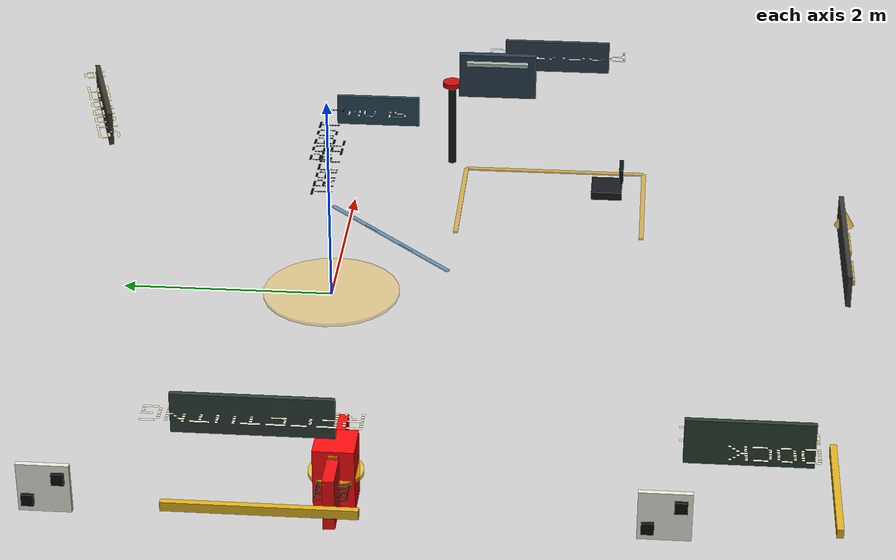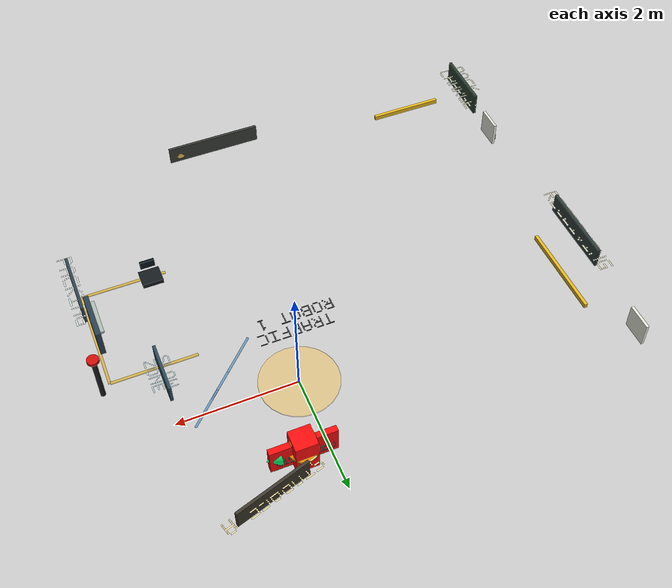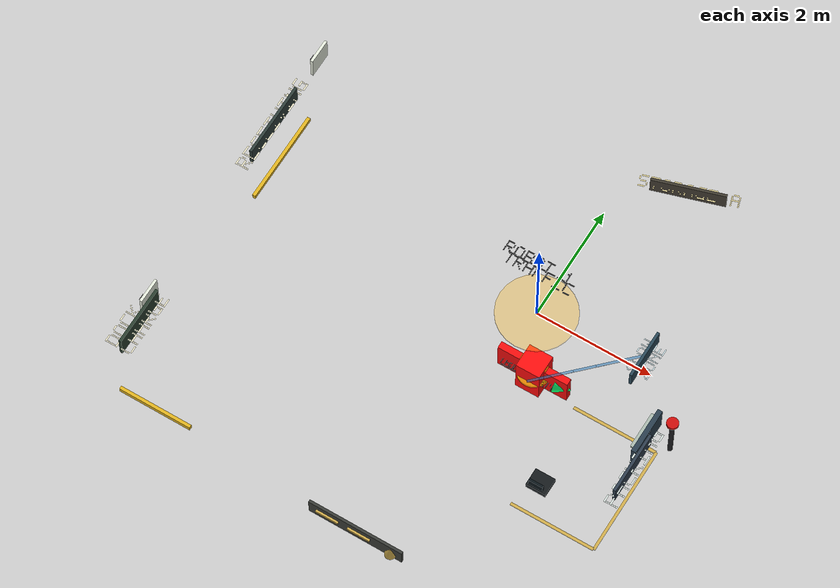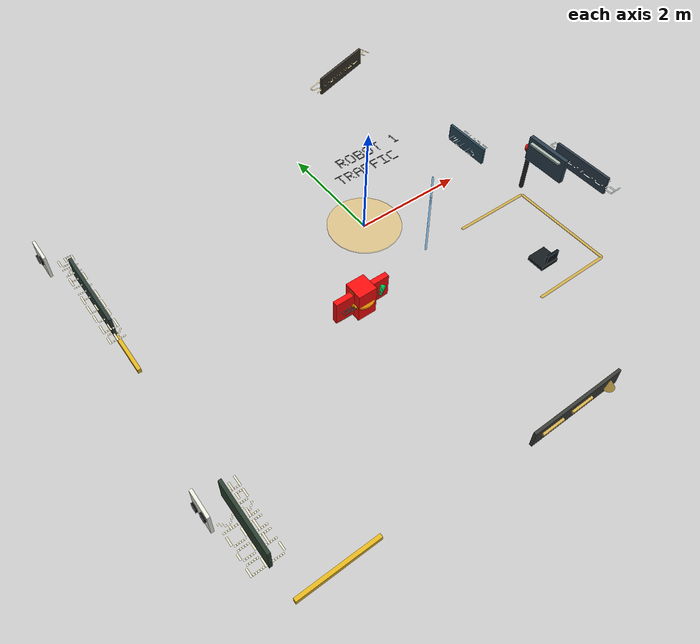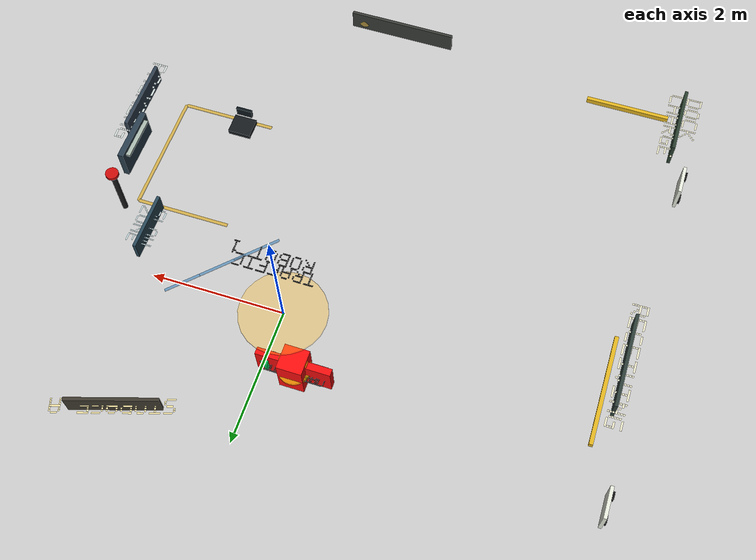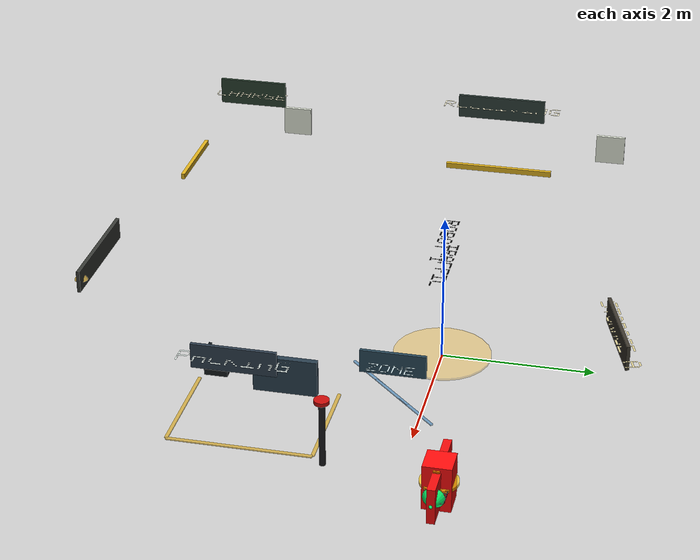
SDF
<sdf version="1.9">
 <world name="factory_patrol">
  <model name="showcase_packing_workcell_detail">
   <static>true</static>
   <link name="link">
    <visual name="packing_tool_board">
     <pose>2.68 -1.40 1.13 0 0 0</pose>
     <geometry><box><size>0.08 0.78 0.46</size></box></geometry>
     <material><diffuse>0.16 0.24 0.30 1</diffuse></material>
    </visual>
    <visual name="packing_tool_shadow_rail">
     <pose>2.63 -1.40 1.28 0 0 0</pose>
     <geometry><box><size>0.10 0.62 0.035</size></box></geometry>
     <material><diffuse>0.66 0.72 0.68 1</diffuse></material>
    </visual>
    <visual name="packing_scale_base">
     <pose>1.58 -2.56 0.44 0 0 0</pose>
     <geometry><box><size>0.34 0.30 0.08</size></box></geometry>
     <material><diffuse>0.08 0.10 0.11 1</diffuse></material>
    </visual>
    <visual name="packing_scale_display">
     <pose>1.58 -2.70 0.63 0 0 0</pose>
     <geometry><box><size>0.24 0.04 0.14</size></box></geometry>
     <material><diffuse>0.04 0.08 0.10 1</diffuse><emissive>0.00 0.14 0.18 1</emissive></material>
    </visual>
    <visual name="packing_safety_boundary_north">
     <pose>2.00 -1.08 0.044 0 0 0</pose>
     <geometry><box><size>1.42 0.045 0.018</size></box></geometry>
     <material><diffuse>0.86 0.68 0.18 0.76</diffuse><emissive>0.10 0.06 0.00 1</emissive></material>
    </visual>
    <visual name="packing_safety_boundary_south">
     <pose>2.00 -2.92 0.044 0 0 0</pose>
     <geometry><box><size>1.42 0.045 0.018</size></box></geometry>
     <material><diffuse>0.86 0.68 0.18 0.76</diffuse><emissive>0.10 0.06 0.00 1</emissive></material>
    </visual>
    <visual name="packing_safety_boundary_east">
     <pose>2.72 -2.00 0.044 0 0 1.5708</pose>
     <geometry><box><size>1.84 0.045 0.018</size></box></geometry>
     <material><diffuse>0.86 0.68 0.18 0.76</diffuse><emissive>0.10 0.06 0.00 1</emissive></material>
    </visual>
   </link>
  </model>
  <model name="showcase_safety_and_landmarks">
   <static>true</static>
   <link name="link">
    <visual name="guardrail_dock_rail">
     <pose>-3.90 -4.55 0.58 0 0 0</pose>
     <geometry><box><size>1.24 0.055 0.08</size></box></geometry>
     <material><diffuse>0.88 0.70 0.12 1</diffuse><emissive>0.14 0.08 0.00 1</emissive></material>
    </visual>
    <visual name="guardrail_receiving_rail">
     <pose>-4.55 0.00 0.58 0 0 1.5708</pose>
     <geometry><box><size>1.58 0.055 0.08</size></box></geometry>
     <material><diffuse>0.88 0.70 0.12 1</diffuse><emissive>0.14 0.08 0.00 1</emissive></material>
    </visual>
    <visual name="estop_post">
     <pose>2.86 -0.92 0.48 0 0 0</pose>
     <geometry><cylinder><radius>0.04</radius><length>0.86</length></cylinder></geometry>
     <material><diffuse>0.10 0.10 0.11 1</diffuse></material>
    </visual>
    <visual name="estop_button">
     <pose>2.86 -0.92 0.94 0 0 0</pose>
     <geometry><cylinder><radius>0.095</radius><length>0.05</length></cylinder></geometry>
     <material><diffuse>0.80 0.05 0.04 1</diffuse><emissive>0.18 0.00 0.00 1</emissive></material>
    </visual>
    <visual name="slow_zone_hash_1">
     <pose>0.72 -0.82 0.050 0 0 0.7854</pose>
     <geometry><box><size>0.72 0.035 0.018</size></box></geometry>
     <material><diffuse>0.18 0.48 0.72 0.58</diffuse></material>
    </visual>
    <visual name="slow_zone_hash_2">
     <pose>1.10 -0.44 0.050 0 0 0.7854</pose>
     <geometry><box><size>0.72 0.035 0.018</size></box></geometry>
     <material><diffuse>0.18 0.48 0.72 0.58</diffuse></material>
    </visual>
    <visual name="slow_zone_hash_3">
     <pose>1.48 -0.06 0.050 0 0 0.7854</pose>
     <geometry><box><size>0.72 0.035 0.018</size></box></geometry>
     <material><diffuse>0.18 0.48 0.72 0.58</diffuse></material>
    </visual>
    <visual name="landmark_receiving_plate">
     <pose>-4.88 1.62 0.92 0 0 0</pose>
     <geometry><box><size>0.045 0.42 0.42</size></box></geometry>
     <material><diffuse>0.90 0.92 0.86 1</diffuse></material>
    </visual>
    <visual name="landmark_receiving_black_1">
     <pose>-4.91 1.50 1.02 0 0 0</pose>
     <geometry><box><size>0.050 0.10 0.10</size></box></geometry>
     <material><diffuse>0.04 0.04 0.04 1</diffuse></material>
    </visual>
    <visual name="landmark_receiving_black_2">
     <pose>-4.91 1.75 0.82 0 0 0</pose>
     <geometry><box><size>0.050 0.10 0.10</size></box></geometry>
     <material><diffuse>0.04 0.04 0.04 1</diffuse></material>
    </visual>
    <visual name="landmark_dock_plate">
     <pose>-4.88 -3.18 0.92 0 0 0</pose>
     <geometry><box><size>0.045 0.42 0.42</size></box></geometry>
     <material><diffuse>0.90 0.92 0.86 1</diffuse></material>
    </visual>
    <visual name="landmark_dock_black_1">
     <pose>-4.91 -3.30 1.02 0 0 0</pose>
     <geometry><box><size>0.050 0.10 0.10</size></box></geometry>
     <material><diffuse>0.04 0.04 0.04 1</diffuse></material>
    </visual>
    <visual name="landmark_dock_black_2">
     <pose>-4.91 -3.05 0.82 0 0 0</pose>
     <geometry><box><size>0.050 0.10 0.10</size></box></geometry>
     <material><diffuse>0.04 0.04 0.04 1</diffuse></material>
    </visual>
   </link>
  </model>
  <model name="showcase_static_station_signs">
   <static>true</static>
   <link name="link">
    <visual name="sign_receiving_board">
     <pose>-4.66 0.00 1.52 0 0 0</pose>
     <geometry><box><size>0.045 1.28 0.34</size></box></geometry>
     <material><diffuse>0.18 0.24 0.22 0.96</diffuse><ambient>0.18 0.24 0.22 0.96</ambient></material>
    </visual>
    <visual name="sign_receiving_text">
     <pose>-4.69 0.00 1.52 0 0 1.5708</pose>
     <geometry>
      <mesh><uri>../media/text_meshes/label_receiving.obj</uri><scale>1.28 1.28 1</scale></mesh>
     </geometry>
     <material>
      <ambient>0.92 0.90 0.78 1</ambient>
      <diffuse>0.92 0.90 0.78 1</diffuse>
      <double_sided>true</double_sided>
     </material>
    </visual>
    <visual name="sign_dock_board">
     <pose>-4.62 -3.80 1.44 0 0 0</pose>
     <geometry><box><size>0.045 1.00 0.38</size></box></geometry>
     <material><diffuse>0.16 0.24 0.18 0.96</diffuse><ambient>0.16 0.24 0.18 0.96</ambient></material>
    </visual>
    <visual name="sign_dock_text">
     <pose>-4.65 -3.80 1.44 0 0 1.5708</pose>
     <geometry><mesh><uri>../media/text_meshes/label_dock.obj</uri><scale>1.35 1.35 1</scale></mesh></geometry>
     <material>
      <ambient>0.92 0.90 0.78 1</ambient>
      <diffuse>0.92 0.90 0.78 1</diffuse>
      <double_sided>true</double_sided>
     </material>
    </visual>
    <visual name="sign_storage_a_board">
     <pose>1.22 2.35 1.34 0 0 0.30</pose>
     <geometry><box><size>1.18 0.045 0.32</size></box></geometry>
     <material><diffuse>0.24 0.22 0.18 0.96</diffuse><ambient>0.24 0.22 0.18 0.96</ambient></material>
    </visual>
    <visual name="sign_storage_a_text">
     <pose>1.22 2.38 1.34 0 0 0.30</pose>
     <geometry>
      <mesh><uri>../media/text_meshes/label_storage_a.obj</uri><scale>1.12 1.12 1</scale></mesh>
     </geometry>
     <material>
      <ambient>0.92 0.86 0.62 1</ambient>
      <diffuse>0.92 0.86 0.62 1</diffuse>
      <double_sided>true</double_sided>
     </material>
    </visual>
    <visual name="sign_packing_board">
     <pose>2.78 -2.00 1.32 0 0 0</pose>
     <geometry><box><size>0.045 1.05 0.32</size></box></geometry>
     <material><diffuse>0.18 0.24 0.30 0.96</diffuse><ambient>0.18 0.24 0.30 0.96</ambient></material>
    </visual>
    <visual name="sign_packing_text">
     <pose>2.81 -2.00 1.32 0 0 1.5708</pose>
     <geometry><mesh><uri>../media/text_meshes/label_packing.obj</uri><scale>1.20 1.20 1</scale></mesh></geometry>
     <material>
      <ambient>0.84 0.88 0.86 1</ambient>
      <diffuse>0.84 0.88 0.86 1</diffuse>
      <double_sided>true</double_sided>
     </material>
    </visual>
    <visual name="sign_slow_zone_board">
     <pose>1.98 -0.25 1.02 0 0 0</pose>
     <geometry><box><size>0.045 0.82 0.30</size></box></geometry>
     <material><diffuse>0.16 0.28 0.34 0.94</diffuse><ambient>0.16 0.28 0.34 0.94</ambient></material>
    </visual>
    <visual name="sign_slow_zone_text">
     <pose>2.01 -0.25 1.02 0 0 1.5708</pose>
     <geometry>
      <mesh><uri>../media/text_meshes/label_slow_zone.obj</uri><scale>1.12 1.12 1</scale></mesh>
     </geometry>
     <material>
      <ambient>0.78 0.86 0.88 1</ambient>
      <diffuse>0.78 0.86 0.88 1</diffuse>
      <double_sided>true</double_sided>
     </material>
    </visual>
    <visual name="sign_route_board">
     <pose>-0.25 -4.78 0.82 0 0 0</pose>
     <geometry><box><size>1.60 0.045 0.30</size></box></geometry>
     <material><diffuse>0.22 0.23 0.21 0.96</diffuse><ambient>0.22 0.23 0.21 0.96</ambient></material>
    </visual>
    <visual name="sign_route_mark_1">
     <pose>-0.72 -4.81 0.84 0 0 0</pose>
     <geometry><box><size>0.38 0.052 0.045</size></box></geometry>
     <material><diffuse>0.82 0.68 0.30 1</diffuse></material>
    </visual>
    <visual name="sign_route_mark_2">
     <pose>-0.18 -4.81 0.84 0 0 0</pose>
     <geometry><box><size>0.38 0.052 0.045</size></box></geometry>
     <material><diffuse>0.82 0.68 0.30 1</diffuse></material>
    </visual>
    <visual name="sign_route_arrow">
     <pose>0.36 -4.81 0.84 0 0 1.5708</pose>
     <geometry><cone><radius>0.09</radius><length>0.16</length></cone></geometry>
     <material><diffuse>0.82 0.68 0.30 1</diffuse></material>
    </visual>
   </link>
  </model>
  <model name="traffic_intersection_zone">
   <static>true</static>
   <pose>0 0 0.03 0 0 0</pose>
   <link name="link">
    <visual name="visual">
     <geometry><cylinder><radius>0.65</radius><length>0.03</length></cylinder></geometry>
     <material><diffuse>1.0 0.72 0.1 0.35</diffuse></material>
    </visual>
   </link>
  </model>
  <model name="traffic_route_block_barrier">
   <static>false</static>
   <pose>0 0 -2 0 0 0</pose>
   <link name="link">
    <gravity>false</gravity>
    <visual name="barrier_visual">
     <geometry><box><size>1.25 0.12 0.55</size></box></geometry>
     <material><diffuse>0.95 0.05 0.05 0.9</diffuse><emissive>0.35 0.0 0.0 1</emissive></material>
    </visual>
   </link>
  </model>
  <model name="traffic_deadlock_warning_beacon">
   <static>false</static>
   <pose>0 0 -2 0 0 0</pose>
   <link name="link">
    <gravity>false</gravity>
    <visual name="warning_visual">
     <geometry><sphere><radius>0.14</radius></sphere></geometry>
     <material><diffuse>1.0 0.18 0.05 0.95</diffuse><emissive>0.75 0.04 0.0 1</emissive></material>
    </visual>
   </link>
  </model>
  <model name="traffic_route_reopen_beacon">
   <static>false</static>
   <pose>0 0 -2 0 0 0</pose>
   <link name="link">
    <gravity>false</gravity>
    <visual name="open_visual">
     <geometry><sphere><radius>0.13</radius></sphere></geometry>
     <material><diffuse>0.04 0.95 0.62 0.95</diffuse><emissive>0.01 0.55 0.28 1</emissive></material>
    </visual>
    <visual name="lane_visual">
     <pose>0 0 -0.28 0 0 0</pose>
     <geometry><box><size>1.10 0.08 0.08</size></box></geometry>
     <material><diffuse>0.04 0.70 0.38 0.85</diffuse><emissive>0.01 0.22 0.10 1</emissive></material>
    </visual>
   </link>
  </model>
  <model name="traffic_yield_wait_marker">
   <static>false</static>
   <pose>0 0 -2 0 0 0</pose>
   <link name="link">
    <gravity>false</gravity>
    <visual name="wait_pad_visual">
     <geometry><cylinder><radius>0.28</radius><length>0.05</length></cylinder></geometry>
     <material><diffuse>1.0 0.78 0.05 0.70</diffuse><emissive>0.35 0.20 0.00 1</emissive></material>
    </visual>
    <visual name="wait_bar_visual">
     <pose>0 0 0.18 0 0 0</pose>
     <geometry><box><size>0.46 0.10 0.26</size></box></geometry>
     <material><diffuse>1.0 0.55 0.02 0.88</diffuse><emissive>0.42 0.18 0.00 1</emissive></material>
    </visual>
   </link>
  </model>
  <model name="traffic_release_go_marker">
   <static>false</static>
   <pose>0 0 -2 0 0 0</pose>
   <link name="link">
    <gravity>false</gravity>
    <visual name="go_lane_visual">
     <geometry><box><size>0.92 0.10 0.10</size></box></geometry>
     <material><diffuse>0.04 0.95 0.42 0.85</diffuse><emissive>0.01 0.48 0.16 1</emissive></material>
    </visual>
    <visual name="go_head_visual">
     <pose>0.54 0 0 0 1.5708 0</pose>
     <geometry><cone><radius>0.16</radius><length>0.26</length></cone></geometry>
     <material><diffuse>0.04 0.95 0.42 0.92</diffuse><emissive>0.01 0.48 0.16 1</emissive></material>
    </visual>
   </link>
  </model>
  <model name="operator_confirmation_panel">
   <static>false</static>
   <pose>0 0 -2 0 0 0</pose>
   <link name="link">
    <gravity>false</gravity>
    <visual name="stand_visual">
     <pose>0 0 -0.18 0 0 0</pose>
     <geometry><cylinder><radius>0.035</radius><length>0.36</length></cylinder></geometry>
     <material><diffuse>0.08 0.08 0.09 1</diffuse></material>
    </visual>
    <visual name="screen_visual">
     <pose>0 0 0.11 0 0 0</pose>
     <geometry><box><size>0.36 0.08 0.26</size></box></geometry>
     <material><diffuse>0.06 0.12 0.18 1</diffuse><emissive>0.00 0.12 0.26 1</emissive></material>
    </visual>
    <visual name="confirm_light_visual">
     <pose>0.12 0 0.18 0 0 0</pose>
     <geometry><sphere><radius>0.055</radius></sphere></geometry>
     <material><diffuse>1.0 0.85 0.05 0.95</diffuse><emissive>0.55 0.36 0.02 1</emissive></material>
    </visual>
   </link>
  </model>
  <model name="payload_lock_indicator">
   <static>false</static>
   <pose>0 0 -2 0 0 0</pose>
   <link name="link">
    <gravity>false</gravity>
    <visual name="lock_base_visual">
     <geometry><box><size>0.34 0.22 0.06</size></box></geometry>
     <material><diffuse>0.04 0.45 0.18 0.95</diffuse><emissive>0.01 0.20 0.06 1</emissive></material>
    </visual>
    <visual name="lock_light_visual">
     <pose>0 0 0.08 0 0 0</pose>
     <geometry><sphere><radius>0.07</radius></sphere></geometry>
     <material><diffuse>0.05 0.95 0.34 0.95</diffuse><emissive>0.02 0.55 0.12 1</emissive></material>
    </visual>
   </link>
  </model>
  <model name="safety_obstacle_block">
   <static>false</static>
   <pose>0 0 -2 0 0 0</pose>
   <link name="link">
    <gravity>false</gravity>
    <visual name="obstacle_visual">
     <geometry><box><size>0.42 0.42 0.70</size></box></geometry>
     <material><diffuse>1.0 0.05 0.05 0.9</diffuse><emissive>0.35 0.0 0.0 1</emissive></material>
    </visual>
   </link>
  </model>
  <model name="label_robot_1">
   <static>false</static>
   <pose>0.00 0.00 1.70 0 0 0.00</pose>
   <link name="link">
    <gravity>false</gravity>
    <visual name="text_mesh_visual">
     <cast_shadows>false</cast_shadows>
     <geometry><mesh><uri>../media/text_meshes/label_robot_1.obj</uri></mesh></geometry>
     <material>
      <ambient>0.000 0.000 0.000 1</ambient>
      <diffuse>0.000 0.000 0.000 1</diffuse>
      <emissive>0 0 0 1</emissive>
      <double_sided>true</double_sided>
     </material>
    </visual>
   </link>
  </model>
  <model name="label_traffic">
   <static>false</static>
   <pose>0.00 0.00 1.35 0 0 0.00</pose>
   <link name="link">
    <gravity>false</gravity>
    <visual name="text_mesh_visual">
     <cast_shadows>false</cast_shadows>
     <geometry><mesh><uri>../media/text_meshes/label_traffic.obj</uri></mesh></geometry>
     <material>
      <ambient>0.000 0.000 0.000 1</ambient>
      <diffuse>0.000 0.000 0.000 1</diffuse>
      <emissive>0 0 0 1</emissive>
      <double_sided>true</double_sided>
     </material>
    </visual>
   </link>
  </model>
  <model name="label_operator_confirmation_status">
   <static>false</static>
   <pose>0.00 0.00 -2 0 0 0.00</pose>
   <link name="link">
    <gravity>false</gravity>
    <visual name="text_mesh_visual">
     <cast_shadows>false</cast_shadows>
     <geometry><mesh><uri>../media/text_meshes/label_operator_confirmation_status.obj</uri></mesh></geometry>
     <material>
      <ambient>0.000 0.000 0.000 1</ambient>
      <diffuse>0.000 0.000 0.000 1</diffuse>
      <emissive>0 0 0 1</emissive>
      <double_sided>true</double_sided>
     </material>
    </visual>
   </link>
  </model>
  <model name="label_traffic_block_status">
   <static>false</static>
   <pose>0.00 0.00 -2 0 0 0.00</pose>
   <link name="link">
    <gravity>false</gravity>
    <visual name="text_mesh_visual">
     <cast_shadows>false</cast_shadows>
     <geometry><mesh><uri>../media/text_meshes/label_traffic_block_status.obj</uri></mesh></geometry>
     <material>
      <ambient>0.000 0.000 0.000 1</ambient>
      <diffuse>0.000 0.000 0.000 1</diffuse>
      <emissive>0 0 0 1</emissive>
      <double_sided>true</double_sided>
     </material>
    </visual>
   </link>
  </model>
 </world>
</sdf>
